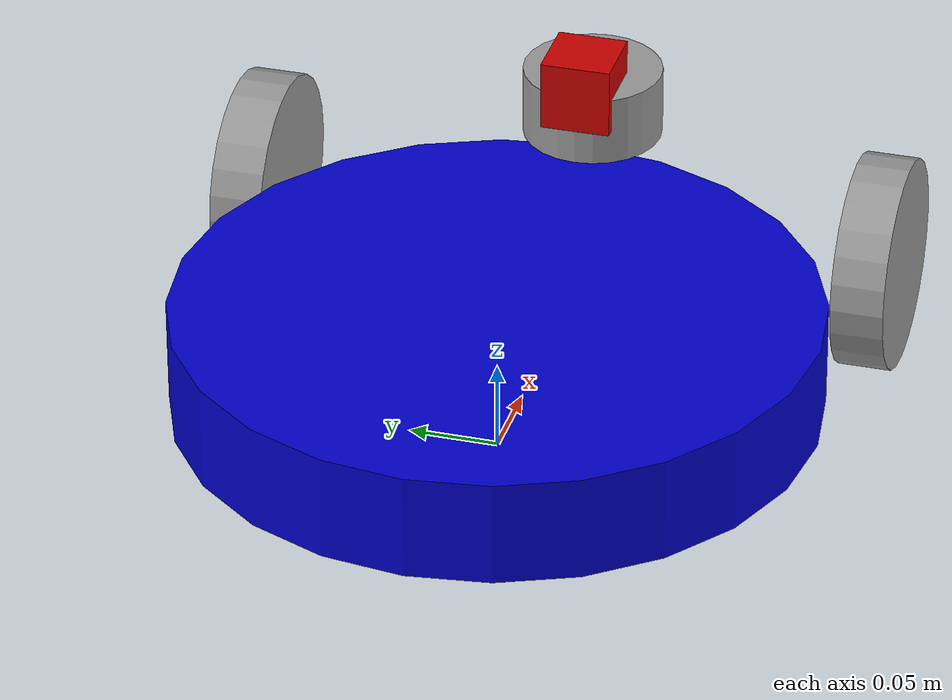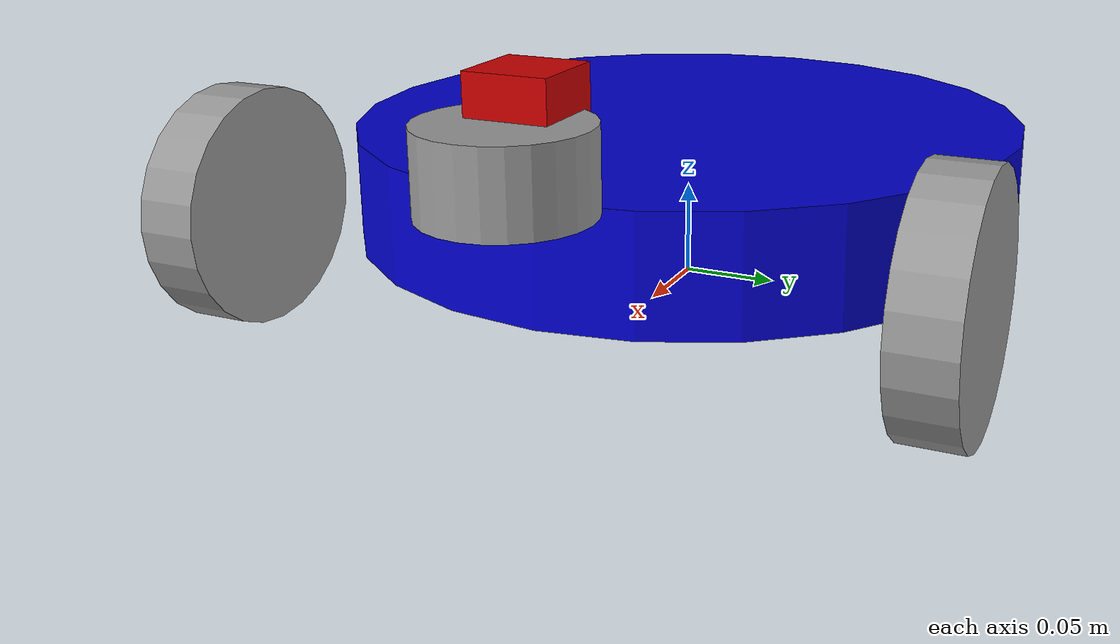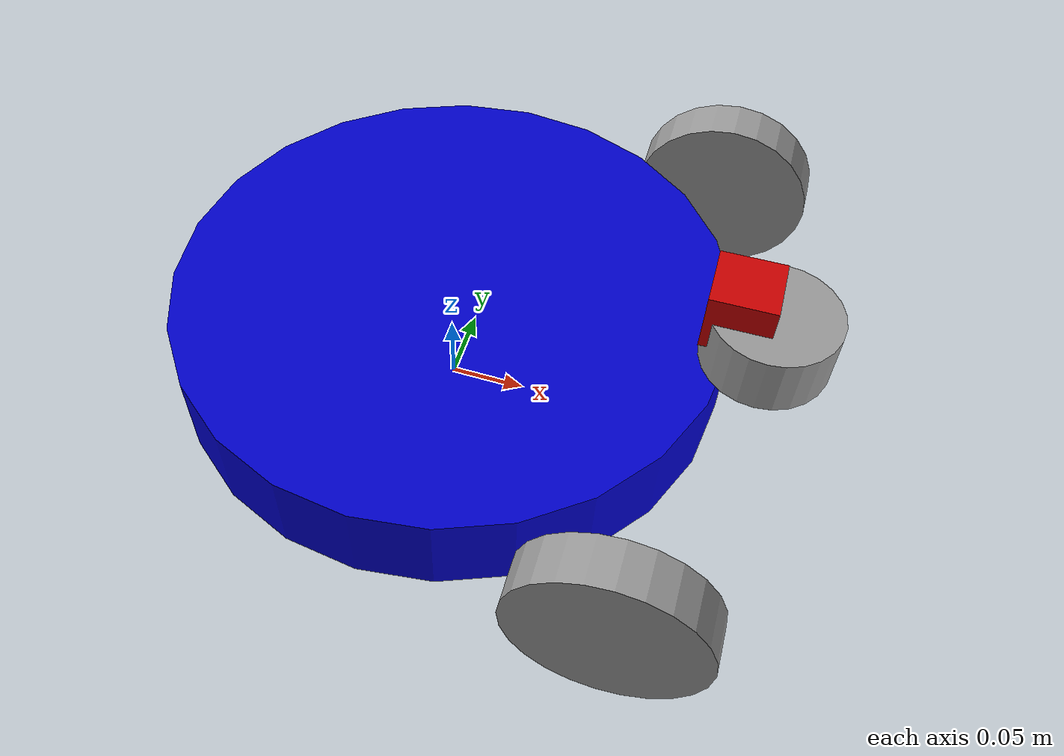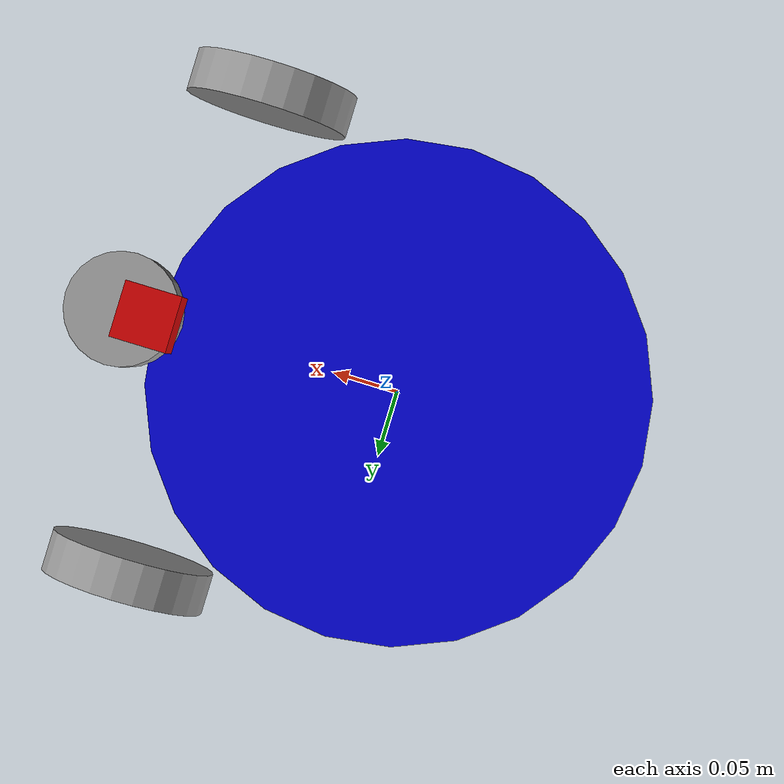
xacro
<?xml version="1.0"?>
<robot name="diff_robot" xmlns:xacro="http://www.ros.org/wiki/xacro">

  <!-- 包含车轮宏定义 -->
  <xacro:include filename="$(find my_robot_description)/urdf/wheel.urdf.xacro" />

  <!-- 属性定义 -->
  <xacro:property name="M_PI" value="3.1415926535897931" />
  <xacro:property name="base_radius"   value="0.18" />
  <xacro:property name="base_height"   value="0.06" />
  <xacro:property name="base_mass"     value="3.0" />
 <!-- 轮子偏移量（相对于车体中心） -->
  <!-- 原值 0.25 和 0.30 过大，现改为更合理的数值 -->
  <xacro:property name="base_x_origin_to_wheel_origin" value="0.15" />   <!-- 前后位置 -->
  <xacro:property name="base_y_origin_to_wheel_origin" value="0.18" />   <!-- 左右位置 -->
  <xacro:property name="base_z_origin_to_wheel_origin" value="0.0" />    <!-- 垂直偏移 -->
  <!-- 车轮参数（半径、宽度、质量）已在 wheel.urdf.xacro 中定义，此处不再重复 -->

  <!-- 万向轮（caster） -->
  <xacro:property name="caster_radius" value="0.025" />
  <xacro:property name="caster_mass"   value="0.2" />

  <!-- 颜色定义 -->
  <material name="Blue">
    <color rgba="0.0 0.0 0.8 1.0"/>
  </material>
  <material name="Red">
    <color rgba="0.8 0.0 0.0 1.0"/>
  </material>
  <material name="Gray">
    <color rgba="0.6 0.6 0.6 1.0"/>
  </material>
  <material name="Black">
    <color rgba="0.1 0.1 0.1 1.0"/>
  </material>

  <!-- ==================== base_footprint ==================== -->
  <link name="base_footprint">
    <inertial>
      <mass value="0.001" />
      <origin xyz="0 0 0" />
      <inertia ixx="0.0001" ixy="0.0" ixz="0.0"
               iyy="0.0001" iyz="0.0"
               izz="0.0001" />
    </inertial>
    <visual>
      <origin xyz="0 0 0" rpy="0 0 0" />
      <geometry>
        <box size="0.001 0.001 0.001" />
      </geometry>
    </visual>
  </link>

  <joint name="base_footprint_joint" type="fixed">
    <origin xyz="0 0 ${wheel_radius}" rpy="0 0 0" />
    <parent link="base_footprint"/>
    <child link="base_link" />
  </joint>

  <!-- ==================== base_link ==================== -->
  <link name="base_link">
    <inertial>
      <mass value="${base_mass}" />
      <origin xyz="0 0 0" />
      <inertia ixx="0.01" ixy="0.0" ixz="0.0"
               iyy="0.01" iyz="0.0"
               izz="0.01" />
    </inertial>
    <visual>
      <origin xyz="0 0 0" rpy="0 0 0" />
      <geometry>
        <cylinder radius="${base_radius}" length="${base_height}" />
      </geometry>
      <material name="Blue" />
    </visual>
    <collision>
      <origin xyz="0 0 0" rpy="0 0 0" />
      <geometry>
        <cylinder radius="${base_radius}" length="${base_height}" />
      </geometry>
    </collision>
  </link>

  <!-- ==================== 万向轮（caster） ==================== -->
  <link name="caster_link">
    <inertial>
      <mass value="${caster_mass}" />
      <origin xyz="0 0 0" />
      <inertia ixx="0.0001" ixy="0.0" ixz="0.0"
               iyy="0.0001" iyz="0.0"
               izz="0.0001" />
    </inertial>
    <visual>
      <origin xyz="0 0 0" rpy="0 0 0" />
      <geometry>
        <sphere radius="${caster_radius}" />
      </geometry>
      <material name="Black" />
    </visual>
    <collision>
      <origin xyz="0 0 0" rpy="0 0 0" />
      <geometry>
        <sphere radius="${caster_radius}" />
      </geometry>
    </collision>
  </link>

  <joint name="caster_joint" type="fixed">
    <parent link="base_link"/>
    <child link="caster_link"/>
    <origin xyz="-0.12 0.0 ${-base_height/2 - 0.005}" rpy="0 0 0"/>
  </joint>

  <!-- ==================== 左右差速轮（使用宏） ==================== -->
  <xacro:wheel fb="front" lr="left"  parent="base_link" translateX="1" translateY="1"  flipY="-1"/>
  <xacro:wheel fb="front" lr="right" parent="base_link" translateX="1" translateY="-1" flipY="-1"/>

  <!-- ==================== 激光雷达（单线） ==================== -->
  <link name="laser_link">
    <inertial>
      <mass value="0.1" />
      <origin xyz="0 0 0" />
      <inertia ixx="0.0001" ixy="0.0" ixz="0.0"
               iyy="0.0001" iyz="0.0"
               izz="0.0001" />
    </inertial>
    <visual>
      <origin xyz="0 0 0" rpy="0 0 0" />
      <geometry>
        <cylinder radius="0.04" length="0.04" />
      </geometry>
      <material name="Gray" />
    </visual>
    <collision>
      <origin xyz="0 0 0" rpy="0 0 0" />
      <geometry>
        <cylinder radius="0.04" length="0.04" />
      </geometry>
    </collision>
  </link>

  <joint name="laser_joint" type="fixed">
    <parent link="base_link"/>
    <child link="laser_link"/>
    <origin xyz="0.20 0.0 ${base_height/2 + 0.02}" rpy="0 0 0"/>
  </joint>

  <!-- 激光雷达 Gazebo 插件 -->
  <gazebo reference="laser_link">
    <sensor type="ray" name="laser_sensor">
      <pose>0 0 0 0 0 0</pose>
      <visualize>true</visualize>
      <update_rate>40</update_rate>
      <ray>
        <scan>
          <horizontal>
            <samples>720</samples>
            <resolution>1</resolution>
            <min_angle>-3.14159</min_angle>
            <max_angle>3.14159</max_angle>
          </horizontal>
        </scan>
        <range>
          <min>0.1</min>
          <max>10.0</max>
          <resolution>0.01</resolution>
        </range>
        <noise>
          <type>gaussian</type>
          <mean>0.0</mean>
          <stddev>0.01</stddev>
        </noise>
      </ray>
      <plugin name="gazebo_ros_laser" filename="libgazebo_ros_laser.so">
        <topicName>/scan</topicName>    <!-- 自定义 topic -->
        <frameName>laser_link</frameName>
      </plugin>
    </sensor>
  </gazebo>

  <!-- ==================== 深度相机（RGB） ==================== -->
  <link name="camera_link">
    <inertial>
      <mass value="0.1" />
      <origin xyz="0 0 0" />
      <inertia ixx="0.0001" ixy="0.0" ixz="0.0"
               iyy="0.0001" iyz="0.0"
               izz="0.0001" />
    </inertial>
    <visual>
      <origin xyz="0 0 0" rpy="0 0 0" />
      <geometry>
        <box size="0.04 0.04 0.04" />
      </geometry>
      <material name="Red" />
    </visual>
    <collision>
      <origin xyz="0 0 0" rpy="0 0 0" />
      <geometry>
        <box size="0.04 0.04 0.04" />
      </geometry>
    </collision>
  </link>

  <joint name="camera_joint" type="fixed">
    <parent link="base_link"/>
    <child link="camera_link"/>
    <origin xyz="0.18 0.0 ${base_height/2 + 0.04}" rpy="0 0 0"/>
  </joint>

  <!-- 相机 Gazebo 插件（发布 RGB 图像） -->
  <gazebo reference="camera_link">
    <sensor type="camera" name="rgb_camera">
      <pose>0 0 0 0 0 0</pose>
      <visualize>true</visualize>
      <update_rate>30</update_rate>
      <camera>
        <horizontal_fov>1.3962634</horizontal_fov>
        <image>
          <width>640</width>
          <height>480</height>
          <format>R8G8B8</format>
        </image>
        <clip>
          <near>0.02</near>
          <far>10.0</far>
        </clip>
        <noise>
          <type>gaussian</type>
          <mean>0.0</mean>
          <stddev>0.007</stddev>
        </noise>
      </camera>
      <plugin name="gazebo_ros_camera" filename="libgazebo_ros_camera.so">
        <alwaysOn>true</alwaysOn>
        <updateRate>30</updateRate>
        <cameraName>rgb_camera</cameraName>
        <imageTopicName>/image_raw</imageTopicName>   <!-- RGB 图像 topic -->
        <cameraInfoTopicName>/camera_info</cameraInfoTopicName>
        <frameName>camera_link</frameName>
      </plugin>
    </sensor>
  </gazebo>

  <!-- ==================== 差速驱动控制器 ==================== -->
  <gazebo>
    <plugin name="differential_drive_controller" filename="libgazebo_ros_diff_drive.so">
      <rosDebugLevel>Debug</rosDebugLevel>
      <publishWheelTF>false</publishWheelTF>
      <robotNamespace>/</robotNamespace>
      <publishTf>1</publishTf>
      <publishWheelJointState>false</publishWheelJointState>
      <alwaysOn>true</alwaysOn>
      <updateRate>100.0</updateRate>
      <leftJoint>front_left_wheel_joint</leftJoint>
      <rightJoint>front_right_wheel_joint</rightJoint>
      <wheelSeparation>${2 * base_radius}</wheelSeparation>
      <wheelDiameter>${2 * wheel_radius}</wheelDiameter>
      <broadcastTF>1</broadcastTF>
      <wheelTorque>5</wheelTorque>
      <wheelAcceleration>1.0</wheelAcceleration>
      <commandTopic>cmd_vel</commandTopic>
      <odometryFrame>odom</odometryFrame>
      <odometryTopic>odom</odometryTopic>
      <robotBaseFrame>base_footprint</robotBaseFrame>
    </plugin>
  </gazebo>

</robot>

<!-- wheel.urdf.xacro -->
<robot xmlns:xacro="http://www.ros.org/wiki/xacro">

  <!-- 车轮基本属性 -->
  <xacro:property name="wheel_radius" value="0.06" />
  <xacro:property name="wheel_height" value="0.03" />
  <xacro:property name="wheel_mass"   value="0.5" />

  <!-- 车轮与底盘中心的偏移系数（相对于 base_radius） -->
  <xacro:property name="base_x_origin_to_wheel_origin" value="0.25" />
  <xacro:property name="base_y_origin_to_wheel_origin" value="0.30" />
  <xacro:property name="base_z_origin_to_wheel_origin" value="0.0" />

  <!-- 惯性矩阵宏 -->
  <xacro:macro name="cylinder_inertia" params="m r h">
    <inertia ixx="${m*(3*r*r+h*h)/12}" ixy="0.0" ixz="0.0"
             iyy="${m*(3*r*r+h*h)/12}" iyz="0.0"
             izz="${m*r*r/2}" />
  </xacro:macro>

  <!-- 车轮宏：fb 为前/后（未使用），lr 为左/右，parent 为父 link，translateX/Y 为方向系数，flipY 用于翻转 -->
  <xacro:macro name="wheel" params="fb lr parent translateX translateY flipY">
    <link name="${fb}_${lr}_wheel">
      <inertial>
        <mass value="${wheel_mass}" />
        <origin xyz="0 0 0" />
        <xacro:cylinder_inertia m="${wheel_mass}" r="${wheel_radius}" h="${wheel_height}" />
      </inertial>
      <visual>
        <origin xyz="0 0 0" rpy="${flipY*M_PI/2} 0 0" />
        <geometry>
          <cylinder radius="${wheel_radius}" length="${wheel_height}" />
        </geometry>
        <material name="Gray" />
      </visual>
      <collision>
        <origin xyz="0 0 0" rpy="${flipY*M_PI/2} 0 0" />
        <geometry>
          <cylinder radius="${wheel_radius}" length="${wheel_height}" />
        </geometry>
      </collision>
    </link>

    <gazebo reference="${fb}_${lr}_wheel">
      <mu1 value="1.0"/>
      <mu2 value="1.0"/>
      <kp value="10000000.0" />
      <kd value="1.0" />
      <fdir1 value="1 0 0"/>
      <material>Gazebo/Grey</material>
      <turnGravityOff>false</turnGravityOff>
    </gazebo>

    <joint name="${fb}_${lr}_wheel_joint" type="continuous">
      <parent link="${parent}"/>
      <child link="${fb}_${lr}_wheel"/>
      <origin xyz="${translateX * base_x_origin_to_wheel_origin} ${translateY * base_y_origin_to_wheel_origin} ${base_z_origin_to_wheel_origin}" rpy="0 0 0" />
      <axis xyz="0 1 0" />
      <limit effort="100" velocity="100"/>
      <joint_properties damping="0.0" friction="0.0"/>
    </joint>

    <!-- 传动（必需） -->
    <transmission name="${fb}_${lr}_wheel_joint_trans">
      <type>transmission_interface/SimpleTransmission</type>
      <joint name="${fb}_${lr}_wheel_joint" />
      <actuator name="${fb}_${lr}_wheel_joint_motor">
        <hardwareInterface>EffortJointInterface</hardwareInterface>
        <mechanicalReduction>1</mechanicalReduction>
      </actuator>
    </transmission>
  </xacro:macro>

</robot>
